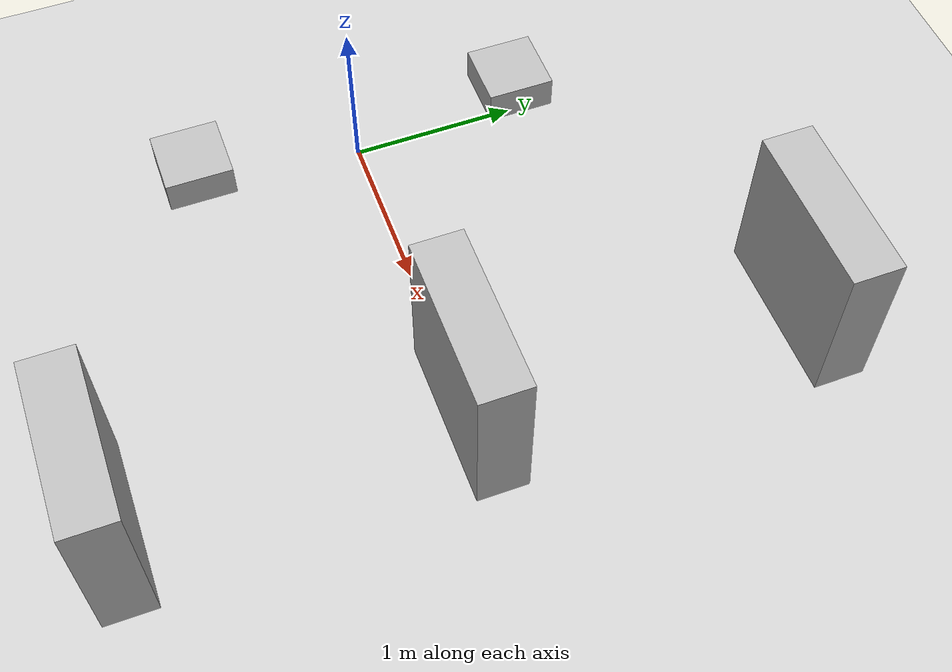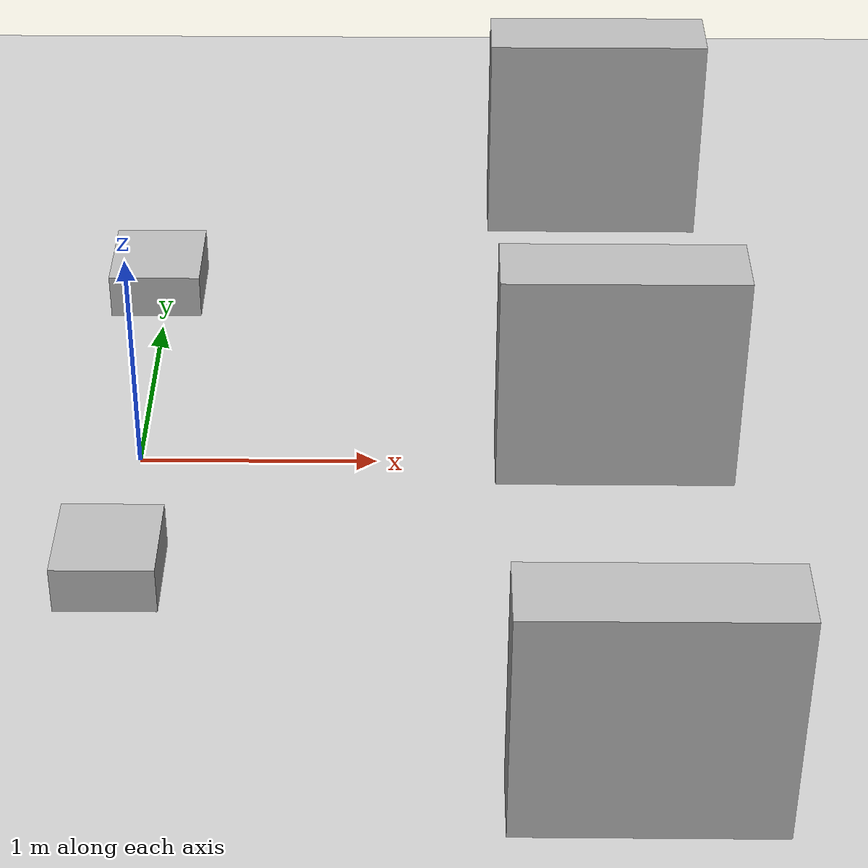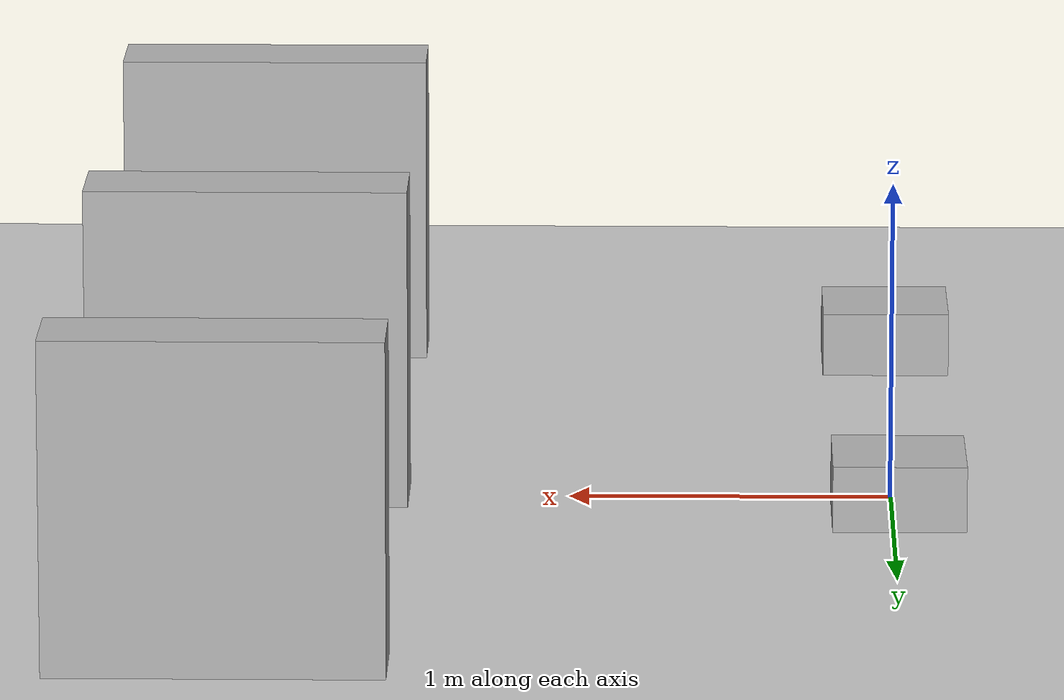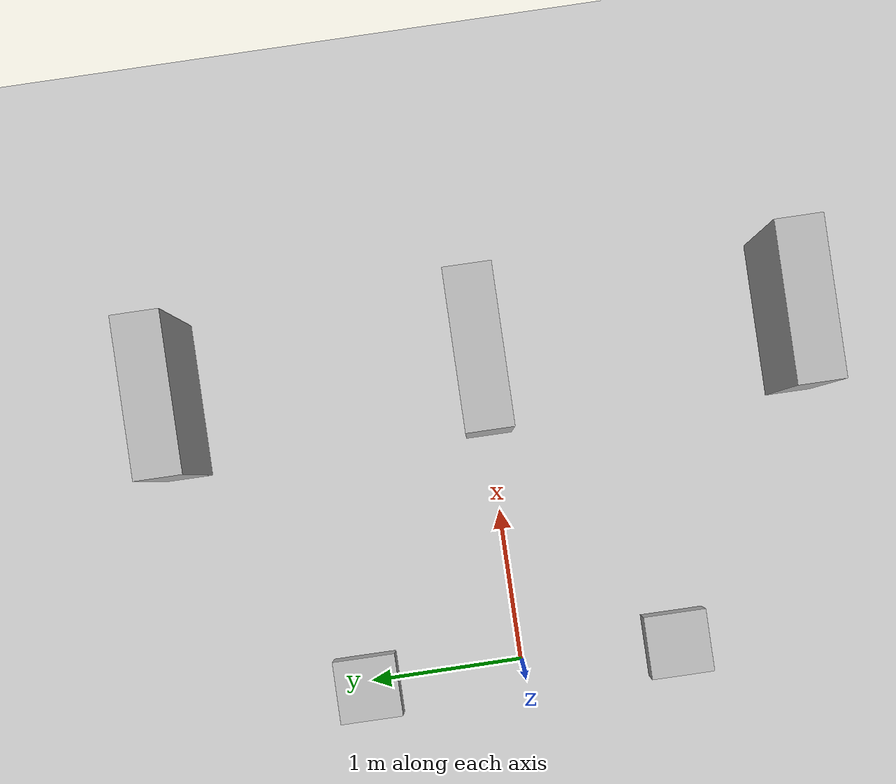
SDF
<sdf version="1.6">
 <world name="default">
  <include><uri>model://ground_plane</uri></include>
  <include><uri>model://sun</uri></include>
  <include><uri>model://shelf</uri><pose>2 0 0 0 0 0</pose></include>
  <include><uri>model://shelf</uri><pose>2 2 0 0 0 0</pose></include>
  <include><uri>model://shelf</uri><pose>2 -2 0 0 0 0</pose></include>
  <include><uri>model://box</uri><pose>0 1 0.2 0 0 0</pose></include>
  <include><uri>model://box</uri><pose>0 -1 0.2 0 0 0</pose></include>
 </world>
</sdf>

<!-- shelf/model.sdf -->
<sdf version="1.6">
  <model name="shelf">
    <static>true</static>
    <link name="base">
      <pose>0 0 0.5 0 0 0</pose>
      <collision name="col"><geometry><box><size>1 0.3 1</size></box></geometry></collision>
      <visual name="vis"><geometry><box><size>1 0.3 1</size></box></geometry></visual>
    </link>
    <link name="s1"><pose>0 0 0.25 0 0 0</pose><collision><geometry><box><size>0.9 0.28 0.02</size></box></geometry></collision><visual><geometry><box><size>0.9 0.28 0.02</size></box></geometry></visual></link>
    <link name="s2"><pose>0 0 0.75 0 0 0</pose><collision><geometry><box><size>0.9 0.28 0.02</size></box></geometry></collision><visual><geometry><box><size>0.9 0.28 0.02</size></box></geometry></visual></link>
    <joint name="j1" type="fixed"><parent>base</parent><child>s1</child></joint>
    <joint name="j2" type="fixed"><parent>base</parent><child>s2</child></joint>
  </model>
</sdf>

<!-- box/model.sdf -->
<sdf version="1.6">
  <model name="box">
    <static>false</static>
    <link name="base">
      <pose>0 0 0.1 0 0 0</pose>
      <collision name="col"><geometry><box><size>0.4 0.4 0.2</size></box></geometry></collision>
      <visual name="vis"><geometry><box><size>0.4 0.4 0.2</size></box></geometry></visual>
    </link>
  </model>
</sdf>
